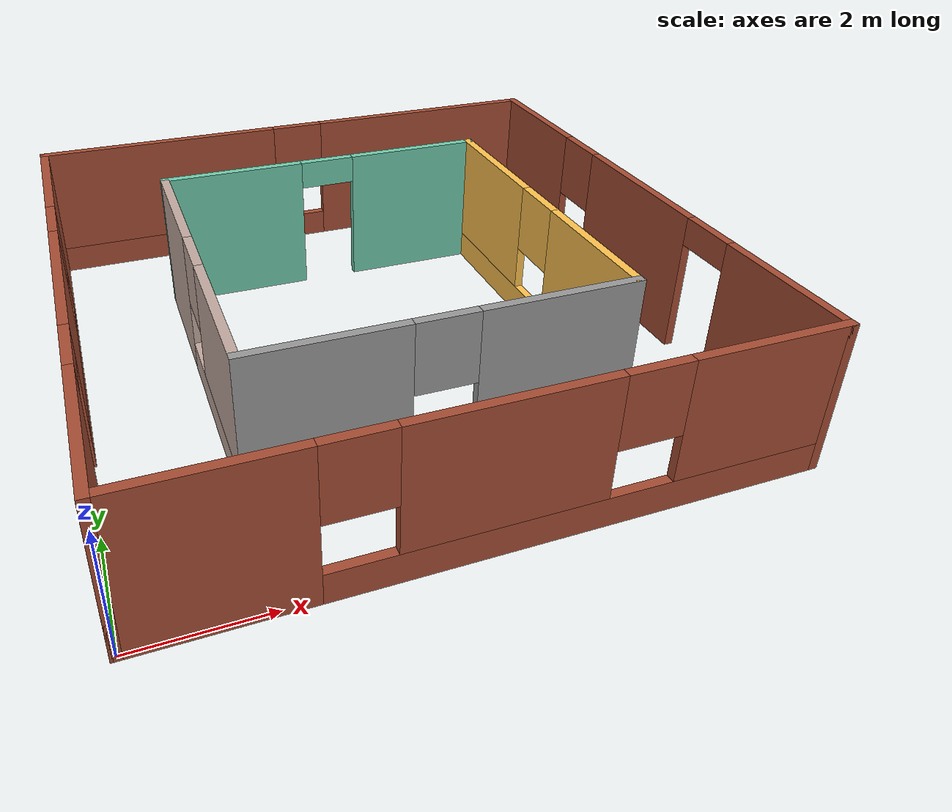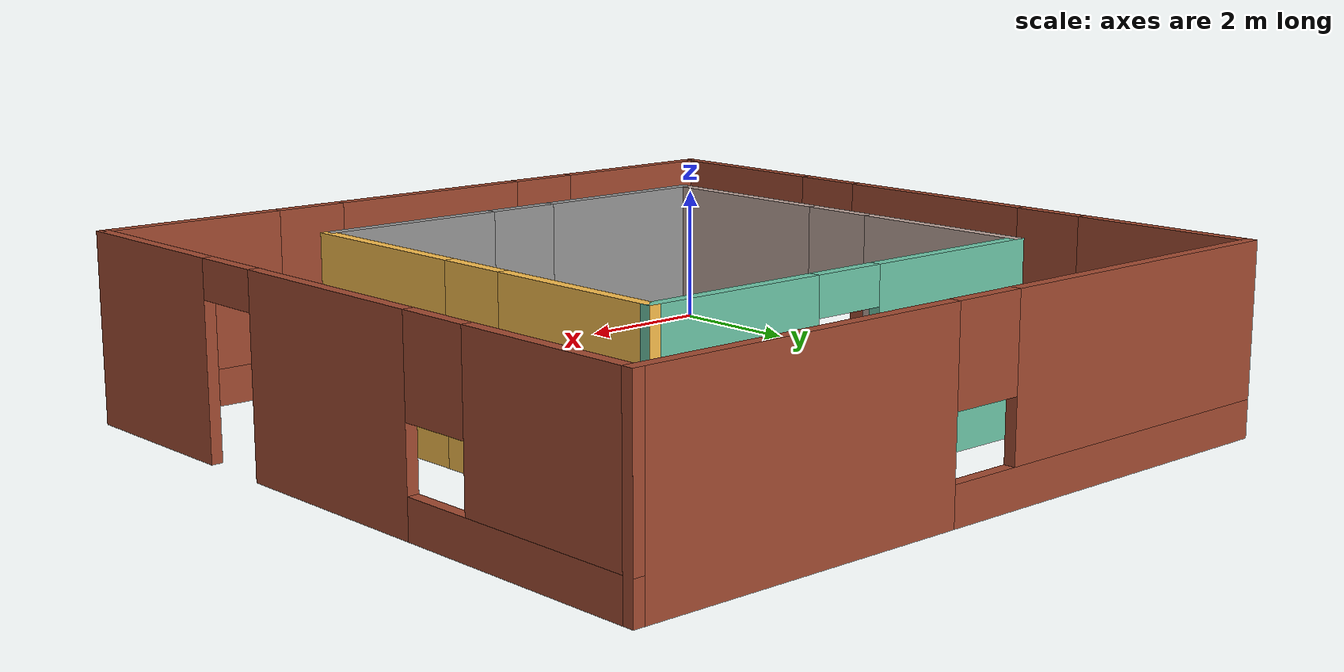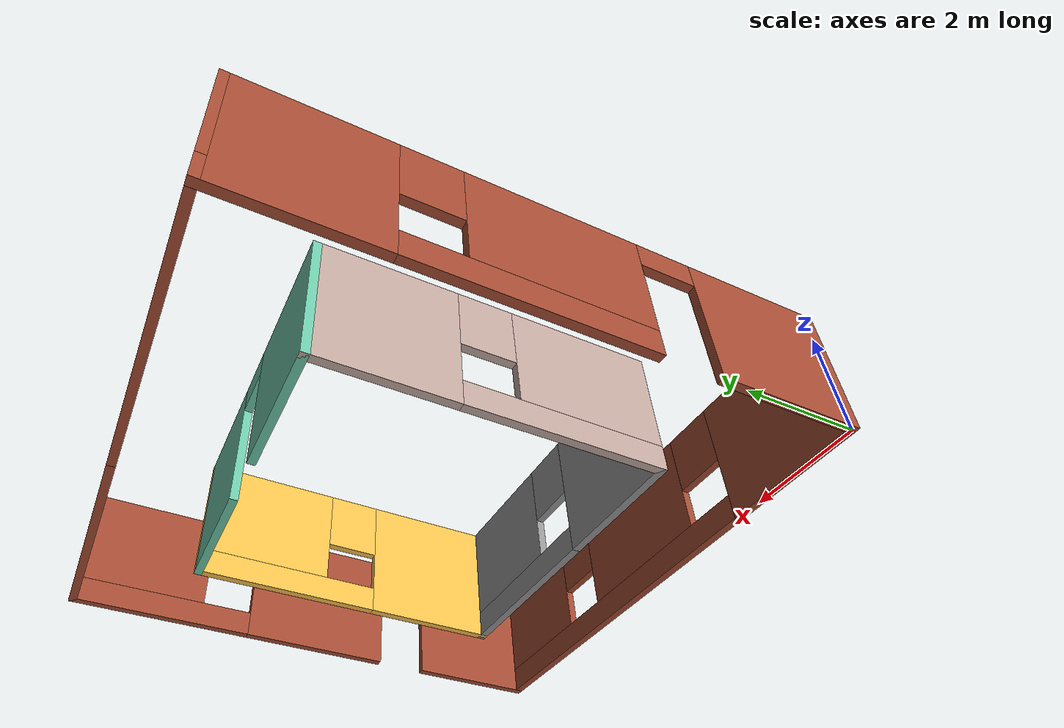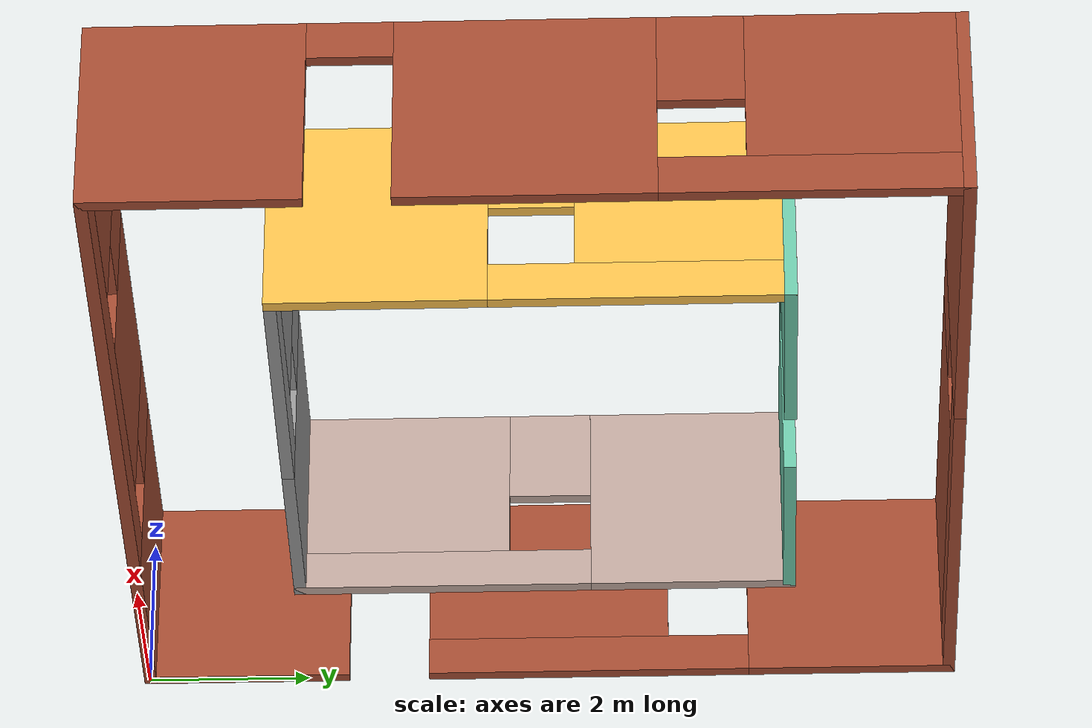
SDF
<?xml version='1.0'?>
<sdf version='1.6'>
  <model name='model_wall'>
    <pose frame=''>5 5 0 0 -0 0</pose>
    <link name='Wall_1'>
      <pose frame=''>5 -0 0 0 -0 1.5708</pose>
      <visual name='Wall_1_Visual_0'>
        <pose frame=''>-3.7875 0 1.25 0 -0 0</pose>
        <geometry>
          <box>
            <size>2.575 0.15 2.5</size>
          </box>
        </geometry>
        <material>
          <script>
            <uri>file://media/materials/scripts/gazebo.material</uri>
            <name>Gazebo/Bricks</name>
          </script>
          <ambient>1 1 1 1</ambient>
        </material>
        <meta>
          <layer>0</layer>
        </meta>
      </visual>
      <collision name='Wall_1_Collision_0'>
        <geometry>
          <box>
            <size>2.575 0.15 2.5</size>
          </box>
        </geometry>
        <pose frame=''>-3.7875 0 1.25 0 -0 0</pose>
      </collision>
      <visual name='Wall_1_Visual_1'>
        <pose frame=''>0 0 1.25 0 -0 0</pose>
        <geometry>
          <box>
            <size>3 0.15 2.5</size>
          </box>
        </geometry>
        <material>
          <script>
            <uri>file://media/materials/scripts/gazebo.material</uri>
            <name>Gazebo/Bricks</name>
          </script>
          <ambient>1 1 1 1</ambient>
        </material>
        <meta>
          <layer>0</layer>
        </meta>
      </visual>
      <collision name='Wall_1_Collision_1'>
        <geometry>
          <box>
            <size>3 0.15 2.5</size>
          </box>
        </geometry>
        <pose frame=''>0 0 1.25 0 -0 0</pose>
      </collision>
      <visual name='Wall_1_Visual_2'>
        <pose frame=''>3.2875 0 0.25 0 -0 0</pose>
        <geometry>
          <box>
            <size>3.575 0.15 0.5</size>
          </box>
        </geometry>
        <material>
          <script>
            <uri>file://media/materials/scripts/gazebo.material</uri>
            <name>Gazebo/Bricks</name>
          </script>
          <ambient>1 1 1 1</ambient>
        </material>
        <meta>
          <layer>0</layer>
        </meta>
      </visual>
      <collision name='Wall_1_Collision_2'>
        <geometry>
          <box>
            <size>3.575 0.15 0.5</size>
          </box>
        </geometry>
        <pose frame=''>3.2875 0 0.25 0 -0 0</pose>
      </collision>
      <visual name='Wall_1_Visual_3'>
        <pose frame=''>3.7875 0 1.5 0 -0 0</pose>
        <geometry>
          <box>
            <size>2.575 0.15 2</size>
          </box>
        </geometry>
        <material>
          <script>
            <uri>file://media/materials/scripts/gazebo.material</uri>
            <name>Gazebo/Bricks</name>
          </script>
          <ambient>1 1 1 1</ambient>
        </material>
        <meta>
          <layer>0</layer>
        </meta>
      </visual>
      <collision name='Wall_1_Collision_3'>
        <geometry>
          <box>
            <size>2.575 0.15 2</size>
          </box>
        </geometry>
        <pose frame=''>3.7875 0 1.5 0 -0 0</pose>
      </collision>
      <visual name='Wall_1_Visual_4'>
        <pose frame=''>2 0 1.9 0 -0 0</pose>
        <geometry>
          <box>
            <size>1 0.15 1.2</size>
          </box>
        </geometry>
        <material>
          <script>
            <uri>file://media/materials/scripts/gazebo.material</uri>
            <name>Gazebo/Bricks</name>
          </script>
          <ambient>1 1 1 1</ambient>
        </material>
        <meta>
          <layer>0</layer>
        </meta>
      </visual>
      <collision name='Wall_1_Collision_4'>
        <geometry>
          <box>
            <size>1 0.15 1.2</size>
          </box>
        </geometry>
        <pose frame=''>2 0 1.9 0 -0 0</pose>
      </collision>
      <visual name='Wall_1_Visual_5'>
        <pose frame=''>-2 0 2.25 0 -0 0</pose>
        <geometry>
          <box>
            <size>1 0.15 0.5</size>
          </box>
        </geometry>
        <material>
          <script>
            <uri>file://media/materials/scripts/gazebo.material</uri>
            <name>Gazebo/Bricks</name>
          </script>
          <ambient>1 1 1 1</ambient>
        </material>
        <meta>
          <layer>0</layer>
        </meta>
      </visual>
      <collision name='Wall_1_Collision_5'>
        <geometry>
          <box>
            <size>1 0.15 0.5</size>
          </box>
        </geometry>
        <pose frame=''>-2 0 2.25 0 -0 0</pose>
      </collision>
    </link>
    <link name='Wall_10'>
      <pose frame=''>-0 -3 0 0 -0 0</pose>
      <visual name='Wall_10_Visual_0'>
        <pose frame=''>-1.80742 0 1.25 0 -0 0</pose>
        <geometry>
          <box>
            <size>2.53517 0.15 2.5</size>
          </box>
        </geometry>
        <material>
          <script>
            <uri>file://media/materials/scripts/gazebo.material</uri>
            <name>Gazebo/Grey</name>
          </script>
          <ambient>1 1 1 1</ambient>
        </material>
        <meta>
          <layer>0</layer>
        </meta>
      </visual>
      <collision name='Wall_10_Collision_0'>
        <geometry>
          <box>
            <size>2.53517 0.15 2.5</size>
          </box>
        </geometry>
        <pose frame=''>-1.80742 0 1.25 0 -0 0</pose>
      </collision>
      <visual name='Wall_10_Visual_1'>
        <pose frame=''>1.26758 0 0.25 0 -0 0</pose>
        <geometry>
          <box>
            <size>3.61483 0.15 0.5</size>
          </box>
        </geometry>
        <material>
          <script>
            <uri>file://media/materials/scripts/gazebo.material</uri>
            <name>Gazebo/Grey</name>
          </script>
          <ambient>1 1 1 1</ambient>
        </material>
        <meta>
          <layer>0</layer>
        </meta>
      </visual>
      <collision name='Wall_10_Collision_1'>
        <geometry>
          <box>
            <size>3.61483 0.15 0.5</size>
          </box>
        </geometry>
        <pose frame=''>1.26758 0 0.25 0 -0 0</pose>
      </collision>
      <visual name='Wall_10_Visual_2'>
        <pose frame=''>1.76758 0 1.5 0 -0 0</pose>
        <geometry>
          <box>
            <size>2.61483 0.15 2</size>
          </box>
        </geometry>
        <material>
          <script>
            <uri>file://media/materials/scripts/gazebo.material</uri>
            <name>Gazebo/Grey</name>
          </script>
          <ambient>1 1 1 1</ambient>
        </material>
        <meta>
          <layer>0</layer>
        </meta>
      </visual>
      <collision name='Wall_10_Collision_2'>
        <geometry>
          <box>
            <size>2.61483 0.15 2</size>
          </box>
        </geometry>
        <pose frame=''>1.76758 0 1.5 0 -0 0</pose>
      </collision>
      <visual name='Wall_10_Visual_3'>
        <pose frame=''>-0.039832 0 1.9 0 -0 0</pose>
        <geometry>
          <box>
            <size>1 0.15 1.2</size>
          </box>
        </geometry>
        <material>
          <script>
            <uri>file://media/materials/scripts/gazebo.material</uri>
            <name>Gazebo/Grey</name>
          </script>
          <ambient>1 1 1 1</ambient>
        </material>
        <meta>
          <layer>0</layer>
        </meta>
      </visual>
      <collision name='Wall_10_Collision_3'>
        <geometry>
          <box>
            <size>1 0.15 1.2</size>
          </box>
        </geometry>
        <pose frame=''>-0.039832 0 1.9 0 -0 0</pose>
      </collision>
    </link>
    <link name='Wall_11'>
      <pose frame=''>3 -0 0 0 -0 1.5708</pose>
      <visual name='Wall_11_Visual_0'>
        <pose frame=''>-1.78192 0 1.25 0 -0 0</pose>
        <geometry>
          <box>
            <size>2.58615 0.15 2.5</size>
          </box>
        </geometry>
        <material>
          <script>
            <uri>file://media/materials/scripts/gazebo.material</uri>
            <name>Gazebo/Grey</name>
          </script>
          <ambient>1 0.764706 0.305882 1</ambient>
        </material>
        <meta>
          <layer>0</layer>
        </meta>
      </visual>
      <collision name='Wall_11_Collision_0'>
        <geometry>
          <box>
            <size>2.58615 0.15 2.5</size>
          </box>
        </geometry>
        <pose frame=''>-1.78192 0 1.25 0 -0 0</pose>
      </collision>
      <visual name='Wall_11_Visual_1'>
        <pose frame=''>1.29308 0 0.25 0 -0 0</pose>
        <geometry>
          <box>
            <size>3.56385 0.15 0.5</size>
          </box>
        </geometry>
        <material>
          <script>
            <uri>file://media/materials/scripts/gazebo.material</uri>
            <name>Gazebo/Grey</name>
          </script>
          <ambient>1 0.764706 0.305882 1</ambient>
        </material>
        <meta>
          <layer>0</layer>
        </meta>
      </visual>
      <collision name='Wall_11_Collision_1'>
        <geometry>
          <box>
            <size>3.56385 0.15 0.5</size>
          </box>
        </geometry>
        <pose frame=''>1.29308 0 0.25 0 -0 0</pose>
      </collision>
      <visual name='Wall_11_Visual_2'>
        <pose frame=''>1.79308 0 1.5 0 -0 0</pose>
        <geometry>
          <box>
            <size>2.56385 0.15 2</size>
          </box>
        </geometry>
        <material>
          <script>
            <uri>file://media/materials/scripts/gazebo.material</uri>
            <name>Gazebo/Grey</name>
          </script>
          <ambient>1 0.764706 0.305882 1</ambient>
        </material>
        <meta>
          <layer>0</layer>
        </meta>
      </visual>
      <collision name='Wall_11_Collision_2'>
        <geometry>
          <box>
            <size>2.56385 0.15 2</size>
          </box>
        </geometry>
        <pose frame=''>1.79308 0 1.5 0 -0 0</pose>
      </collision>
      <visual name='Wall_11_Visual_3'>
        <pose frame=''>0.011152 0 1.9 0 -0 0</pose>
        <geometry>
          <box>
            <size>1 0.15 1.2</size>
          </box>
        </geometry>
        <material>
          <script>
            <uri>file://media/materials/scripts/gazebo.material</uri>
            <name>Gazebo/Grey</name>
          </script>
          <ambient>1 0.764706 0.305882 1</ambient>
        </material>
        <meta>
          <layer>0</layer>
        </meta>
      </visual>
      <collision name='Wall_11_Collision_3'>
        <geometry>
          <box>
            <size>1 0.15 1.2</size>
          </box>
        </geometry>
        <pose frame=''>0.011152 0 1.9 0 -0 0</pose>
      </collision>
    </link>
    <link name='Wall_12'>
      <pose frame=''>-0 3 0 0 -0 3.14159</pose>
      <visual name='Wall_12_Visual_0'>
        <pose frame=''>-1.80804 0 1.25 0 -0 0</pose>
        <geometry>
          <box>
            <size>2.53392 0.15 2.5</size>
          </box>
        </geometry>
        <material>
          <script>
            <uri>file://media/materials/scripts/gazebo.material</uri>
            <name>Gazebo/Grey</name>
          </script>
          <ambient>0.435294 0.796078 0.67451 1</ambient>
        </material>
        <meta>
          <layer>0</layer>
        </meta>
      </visual>
      <collision name='Wall_12_Collision_0'>
        <geometry>
          <box>
            <size>2.53392 0.15 2.5</size>
          </box>
        </geometry>
        <pose frame=''>-1.80804 0 1.25 0 -0 0</pose>
      </collision>
      <visual name='Wall_12_Visual_1'>
        <pose frame=''>1.76696 0 1.25 0 -0 0</pose>
        <geometry>
          <box>
            <size>2.61608 0.15 2.5</size>
          </box>
        </geometry>
        <material>
          <script>
            <uri>file://media/materials/scripts/gazebo.material</uri>
            <name>Gazebo/Grey</name>
          </script>
          <ambient>0.435294 0.796078 0.67451 1</ambient>
        </material>
        <meta>
          <layer>0</layer>
        </meta>
      </visual>
      <collision name='Wall_12_Collision_1'>
        <geometry>
          <box>
            <size>2.61608 0.15 2.5</size>
          </box>
        </geometry>
        <pose frame=''>1.76696 0 1.25 0 -0 0</pose>
      </collision>
      <visual name='Wall_12_Visual_2'>
        <pose frame=''>-0.041079 0 2.25 0 -0 0</pose>
        <geometry>
          <box>
            <size>1 0.15 0.5</size>
          </box>
        </geometry>
        <material>
          <script>
            <uri>file://media/materials/scripts/gazebo.material</uri>
            <name>Gazebo/Grey</name>
          </script>
          <ambient>0.435294 0.796078 0.67451 1</ambient>
        </material>
        <meta>
          <layer>0</layer>
        </meta>
      </visual>
      <collision name='Wall_12_Collision_2'>
        <geometry>
          <box>
            <size>1 0.15 0.5</size>
          </box>
        </geometry>
        <pose frame=''>-0.041079 0 2.25 0 -0 0</pose>
      </collision>
    </link>
    <link name='Wall_2'>
      <pose frame=''>-0 5 0 0 -0 3.14159</pose>
      <visual name='Wall_2_Visual_0'>
        <pose frame=''>-2.7875 0 1.25 0 -0 0</pose>
        <geometry>
          <box>
            <size>4.575 0.15 2.5</size>
          </box>
        </geometry>
        <material>
          <script>
            <uri>file://media/materials/scripts/gazebo.material</uri>
            <name>Gazebo/Bricks</name>
          </script>
          <ambient>1 1 1 1</ambient>
        </material>
        <meta>
          <layer>0</layer>
        </meta>
      </visual>
      <collision name='Wall_2_Collision_0'>
        <geometry>
          <box>
            <size>4.575 0.15 2.5</size>
          </box>
        </geometry>
        <pose frame=''>-2.7875 0 1.25 0 -0 0</pose>
      </collision>
      <visual name='Wall_2_Visual_1'>
        <pose frame=''>2.2875 0 0.25 0 -0 0</pose>
        <geometry>
          <box>
            <size>5.575 0.15 0.5</size>
          </box>
        </geometry>
        <material>
          <script>
            <uri>file://media/materials/scripts/gazebo.material</uri>
            <name>Gazebo/Bricks</name>
          </script>
          <ambient>1 1 1 1</ambient>
        </material>
        <meta>
          <layer>0</layer>
        </meta>
      </visual>
      <collision name='Wall_2_Collision_1'>
        <geometry>
          <box>
            <size>5.575 0.15 0.5</size>
          </box>
        </geometry>
        <pose frame=''>2.2875 0 0.25 0 -0 0</pose>
      </collision>
      <visual name='Wall_2_Visual_2'>
        <pose frame=''>2.7875 0 1.5 0 -0 0</pose>
        <geometry>
          <box>
            <size>4.575 0.15 2</size>
          </box>
        </geometry>
        <material>
          <script>
            <uri>file://media/materials/scripts/gazebo.material</uri>
            <name>Gazebo/Bricks</name>
          </script>
          <ambient>1 1 1 1</ambient>
        </material>
        <meta>
          <layer>0</layer>
        </meta>
      </visual>
      <collision name='Wall_2_Collision_2'>
        <geometry>
          <box>
            <size>4.575 0.15 2</size>
          </box>
        </geometry>
        <pose frame=''>2.7875 0 1.5 0 -0 0</pose>
      </collision>
      <visual name='Wall_2_Visual_3'>
        <pose frame=''>0 0 1.9 0 -0 0</pose>
        <geometry>
          <box>
            <size>1 0.15 1.2</size>
          </box>
        </geometry>
        <material>
          <script>
            <uri>file://media/materials/scripts/gazebo.material</uri>
            <name>Gazebo/Bricks</name>
          </script>
          <ambient>1 1 1 1</ambient>
        </material>
        <meta>
          <layer>0</layer>
        </meta>
      </visual>
      <collision name='Wall_2_Collision_3'>
        <geometry>
          <box>
            <size>1 0.15 1.2</size>
          </box>
        </geometry>
        <pose frame=''>0 0 1.9 0 -0 0</pose>
      </collision>
    </link>
    <link name='Wall_6'>
      <pose frame=''>-5 -0 0 0 -0 -1.5708</pose>
      <visual name='Wall_6_Visual_0'>
        <pose frame=''>-3.7875 0 1.25 0 -0 0</pose>
        <geometry>
          <box>
            <size>2.575 0.15 2.5</size>
          </box>
        </geometry>
        <material>
          <script>
            <uri>file://media/materials/scripts/gazebo.material</uri>
            <name>Gazebo/Bricks</name>
          </script>
          <ambient>1 1 1 1</ambient>
        </material>
        <meta>
          <layer>0</layer>
        </meta>
      </visual>
      <collision name='Wall_6_Collision_0'>
        <geometry>
          <box>
            <size>2.575 0.15 2.5</size>
          </box>
        </geometry>
        <pose frame=''>-3.7875 0 1.25 0 -0 0</pose>
      </collision>
      <visual name='Wall_6_Visual_1'>
        <pose frame=''>3.7875 0 1.25 0 -0 0</pose>
        <geometry>
          <box>
            <size>2.575 0.15 2.5</size>
          </box>
        </geometry>
        <material>
          <script>
            <uri>file://media/materials/scripts/gazebo.material</uri>
            <name>Gazebo/Bricks</name>
          </script>
          <ambient>1 1 1 1</ambient>
        </material>
        <meta>
          <layer>0</layer>
        </meta>
      </visual>
      <collision name='Wall_6_Collision_1'>
        <geometry>
          <box>
            <size>2.575 0.15 2.5</size>
          </box>
        </geometry>
        <pose frame=''>3.7875 0 1.25 0 -0 0</pose>
      </collision>
      <visual name='Wall_6_Visual_2'>
        <pose frame=''>-0.5 0 0.25 0 -0 0</pose>
        <geometry>
          <box>
            <size>4 0.15 0.5</size>
          </box>
        </geometry>
        <material>
          <script>
            <uri>file://media/materials/scripts/gazebo.material</uri>
            <name>Gazebo/Bricks</name>
          </script>
          <ambient>1 1 1 1</ambient>
        </material>
        <meta>
          <layer>0</layer>
        </meta>
      </visual>
      <collision name='Wall_6_Collision_2'>
        <geometry>
          <box>
            <size>4 0.15 0.5</size>
          </box>
        </geometry>
        <pose frame=''>-0.5 0 0.25 0 -0 0</pose>
      </collision>
      <visual name='Wall_6_Visual_3'>
        <pose frame=''>0 0 1.5 0 -0 0</pose>
        <geometry>
          <box>
            <size>3 0.15 2</size>
          </box>
        </geometry>
        <material>
          <script>
            <uri>file://media/materials/scripts/gazebo.material</uri>
            <name>Gazebo/Bricks</name>
          </script>
          <ambient>1 1 1 1</ambient>
        </material>
        <meta>
          <layer>0</layer>
        </meta>
      </visual>
      <collision name='Wall_6_Collision_3'>
        <geometry>
          <box>
            <size>3 0.15 2</size>
          </box>
        </geometry>
        <pose frame=''>0 0 1.5 0 -0 0</pose>
      </collision>
      <visual name='Wall_6_Visual_4'>
        <pose frame=''>-2 0 1.9 0 -0 0</pose>
        <geometry>
          <box>
            <size>1 0.15 1.2</size>
          </box>
        </geometry>
        <material>
          <script>
            <uri>file://media/materials/scripts/gazebo.material</uri>
            <name>Gazebo/Bricks</name>
          </script>
          <ambient>1 1 1 1</ambient>
        </material>
        <meta>
          <layer>0</layer>
        </meta>
      </visual>
      <collision name='Wall_6_Collision_4'>
        <geometry>
          <box>
            <size>1 0.15 1.2</size>
          </box>
        </geometry>
        <pose frame=''>-2 0 1.9 0 -0 0</pose>
      </collision>
      <visual name='Wall_6_Visual_5'>
        <pose frame=''>2 0 2.25 0 -0 0</pose>
        <geometry>
          <box>
            <size>1 0.15 0.5</size>
          </box>
        </geometry>
        <material>
          <script>
            <uri>file://media/materials/scripts/gazebo.material</uri>
            <name>Gazebo/Bricks</name>
          </script>
          <ambient>1 1 1 1</ambient>
        </material>
        <meta>
          <layer>0</layer>
        </meta>
      </visual>
      <collision name='Wall_6_Collision_5'>
        <geometry>
          <box>
            <size>1 0.15 0.5</size>
          </box>
        </geometry>
        <pose frame=''>2 0 2.25 0 -0 0</pose>
      </collision>
    </link>
    <link name='Wall_7'>
      <pose frame=''>-0 -5 0 0 -0 0</pose>
      <visual name='Wall_7_Visual_0'>
        <pose frame=''>-3.7875 0 1.25 0 -0 0</pose>
        <geometry>
          <box>
            <size>2.575 0.15 2.5</size>
          </box>
        </geometry>
        <material>
          <script>
            <uri>file://media/materials/scripts/gazebo.material</uri>
            <name>Gazebo/Bricks</name>
          </script>
          <ambient>1 1 1 1</ambient>
        </material>
        <meta>
          <layer>0</layer>
        </meta>
      </visual>
      <collision name='Wall_7_Collision_0'>
        <geometry>
          <box>
            <size>2.575 0.15 2.5</size>
          </box>
        </geometry>
        <pose frame=''>-3.7875 0 1.25 0 -0 0</pose>
      </collision>
      <visual name='Wall_7_Visual_1'>
        <pose frame=''>1.2875 0 0.25 0 -0 0</pose>
        <geometry>
          <box>
            <size>7.575 0.15 0.5</size>
          </box>
        </geometry>
        <material>
          <script>
            <uri>file://media/materials/scripts/gazebo.material</uri>
            <name>Gazebo/Bricks</name>
          </script>
          <ambient>1 1 1 1</ambient>
        </material>
        <meta>
          <layer>0</layer>
        </meta>
      </visual>
      <collision name='Wall_7_Collision_1'>
        <geometry>
          <box>
            <size>7.575 0.15 0.5</size>
          </box>
        </geometry>
        <pose frame=''>1.2875 0 0.25 0 -0 0</pose>
      </collision>
      <visual name='Wall_7_Visual_2'>
        <pose frame=''>0 0 1.5 0 -0 0</pose>
        <geometry>
          <box>
            <size>3 0.15 2</size>
          </box>
        </geometry>
        <material>
          <script>
            <uri>file://media/materials/scripts/gazebo.material</uri>
            <name>Gazebo/Bricks</name>
          </script>
          <ambient>1 1 1 1</ambient>
        </material>
        <meta>
          <layer>0</layer>
        </meta>
      </visual>
      <collision name='Wall_7_Collision_2'>
        <geometry>
          <box>
            <size>3 0.15 2</size>
          </box>
        </geometry>
        <pose frame=''>0 0 1.5 0 -0 0</pose>
      </collision>
      <visual name='Wall_7_Visual_3'>
        <pose frame=''>3.7875 0 1.5 0 -0 0</pose>
        <geometry>
          <box>
            <size>2.575 0.15 2</size>
          </box>
        </geometry>
        <material>
          <script>
            <uri>file://media/materials/scripts/gazebo.material</uri>
            <name>Gazebo/Bricks</name>
          </script>
          <ambient>1 1 1 1</ambient>
        </material>
        <meta>
          <layer>0</layer>
        </meta>
      </visual>
      <collision name='Wall_7_Collision_3'>
        <geometry>
          <box>
            <size>2.575 0.15 2</size>
          </box>
        </geometry>
        <pose frame=''>3.7875 0 1.5 0 -0 0</pose>
      </collision>
      <visual name='Wall_7_Visual_4'>
        <pose frame=''>-2 0 1.9 0 -0 0</pose>
        <geometry>
          <box>
            <size>1 0.15 1.2</size>
          </box>
        </geometry>
        <material>
          <script>
            <uri>file://media/materials/scripts/gazebo.material</uri>
            <name>Gazebo/Bricks</name>
          </script>
          <ambient>1 1 1 1</ambient>
        </material>
        <meta>
          <layer>0</layer>
        </meta>
      </visual>
      <collision name='Wall_7_Collision_4'>
        <geometry>
          <box>
            <size>1 0.15 1.2</size>
          </box>
        </geometry>
        <pose frame=''>-2 0 1.9 0 -0 0</pose>
      </collision>
      <visual name='Wall_7_Visual_5'>
        <pose frame=''>2 0 1.9 0 -0 0</pose>
        <geometry>
          <box>
            <size>1 0.15 1.2</size>
          </box>
        </geometry>
        <material>
          <script>
            <uri>file://media/materials/scripts/gazebo.material</uri>
            <name>Gazebo/Bricks</name>
          </script>
          <ambient>1 1 1 1</ambient>
        </material>
        <meta>
          <layer>0</layer>
        </meta>
      </visual>
      <collision name='Wall_7_Collision_5'>
        <geometry>
          <box>
            <size>1 0.15 1.2</size>
          </box>
        </geometry>
        <pose frame=''>2 0 1.9 0 -0 0</pose>
      </collision>
    </link>
    <link name='Wall_9'>
      <pose frame=''>-3 -0 0 0 -0 -1.5708</pose>
      <visual name='Wall_9_Visual_0'>
        <pose frame=''>-1.82342 0 1.25 0 -0 0</pose>
        <geometry>
          <box>
            <size>2.50316 0.15 2.5</size>
          </box>
        </geometry>
        <material>
          <script>
            <uri>file://media/materials/scripts/gazebo.material</uri>
            <name>Gazebo/Grey</name>
          </script>
          <ambient>0.760784 0.662745 0.627451 1</ambient>
        </material>
        <meta>
          <layer>0</layer>
        </meta>
      </visual>
      <collision name='Wall_9_Collision_0'>
        <geometry>
          <box>
            <size>2.50316 0.15 2.5</size>
          </box>
        </geometry>
        <pose frame=''>-1.82342 0 1.25 0 -0 0</pose>
      </collision>
      <visual name='Wall_9_Visual_1'>
        <pose frame=''>1.25158 0 0.25 0 -0 0</pose>
        <geometry>
          <box>
            <size>3.64684 0.15 0.5</size>
          </box>
        </geometry>
        <material>
          <script>
            <uri>file://media/materials/scripts/gazebo.material</uri>
            <name>Gazebo/Grey</name>
          </script>
          <ambient>0.760784 0.662745 0.627451 1</ambient>
        </material>
        <meta>
          <layer>0</layer>
        </meta>
      </visual>
      <collision name='Wall_9_Collision_1'>
        <geometry>
          <box>
            <size>3.64684 0.15 0.5</size>
          </box>
        </geometry>
        <pose frame=''>1.25158 0 0.25 0 -0 0</pose>
      </collision>
      <visual name='Wall_9_Visual_2'>
        <pose frame=''>1.75158 0 1.5 0 -0 0</pose>
        <geometry>
          <box>
            <size>2.64684 0.15 2</size>
          </box>
        </geometry>
        <material>
          <script>
            <uri>file://media/materials/scripts/gazebo.material</uri>
            <name>Gazebo/Grey</name>
          </script>
          <ambient>0.760784 0.662745 0.627451 1</ambient>
        </material>
        <meta>
          <layer>0</layer>
        </meta>
      </visual>
      <collision name='Wall_9_Collision_2'>
        <geometry>
          <box>
            <size>2.64684 0.15 2</size>
          </box>
        </geometry>
        <pose frame=''>1.75158 0 1.5 0 -0 0</pose>
      </collision>
      <visual name='Wall_9_Visual_3'>
        <pose frame=''>-0.071836 0 1.9 0 -0 0</pose>
        <geometry>
          <box>
            <size>1 0.15 1.2</size>
          </box>
        </geometry>
        <material>
          <script>
            <uri>file://media/materials/scripts/gazebo.material</uri>
            <name>Gazebo/Grey</name>
          </script>
          <ambient>0.760784 0.662745 0.627451 1</ambient>
        </material>
        <meta>
          <layer>0</layer>
        </meta>
      </visual>
      <collision name='Wall_9_Collision_3'>
        <geometry>
          <box>
            <size>1 0.15 1.2</size>
          </box>
        </geometry>
        <pose frame=''>-0.071836 0 1.9 0 -0 0</pose>
      </collision>
    </link>
    <static>1</static>
  </model>
</sdf>
